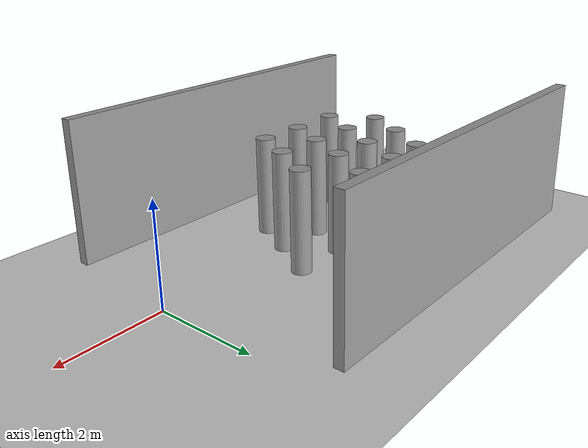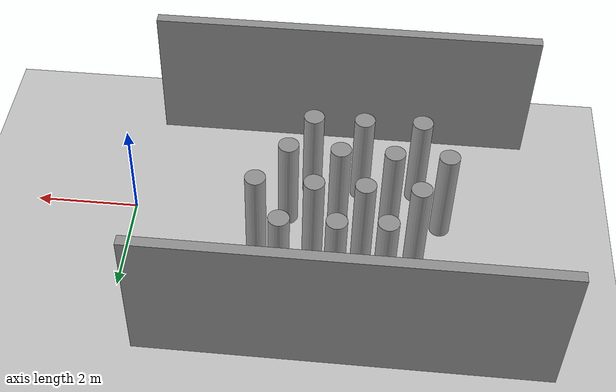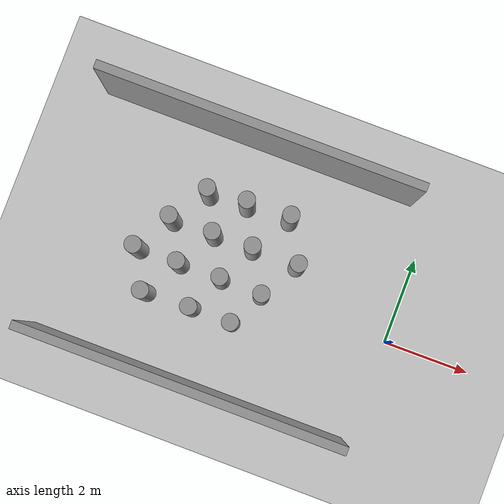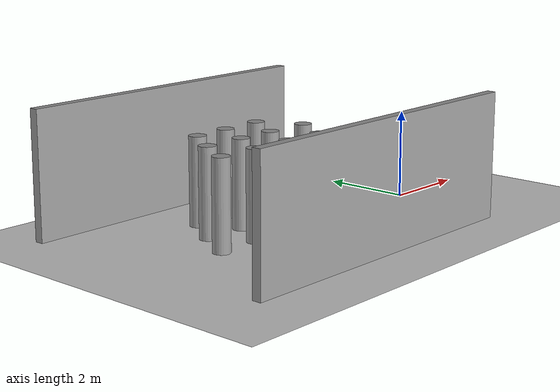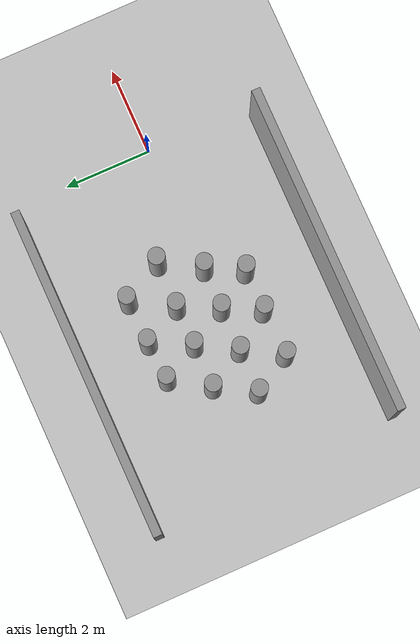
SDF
<sdf version="1.7">
 <world name="default">
  <light name="sun" type="directional">
   <pose>0 0 10 0 -0 0</pose>
   <diffuse>0.8 0.8 0.8 1</diffuse>
   <specular>0.2 0.2 0.2 1</specular>
   <attenuation>
    <range>1000</range>
    <constant>0.9</constant>
    <linear>0.01</linear>
    <quadratic>0.001</quadratic>
   </attenuation>
   <direction>-0.5 0.1 -0.9</direction>
   <spot><inner_angle>0</inner_angle><outer_angle>0</outer_angle><falloff>0</falloff></spot>
  </light>
  <model name="ground_plane">
   <static>1</static>
   <link name="link">
    <collision name="collision">
     <geometry><plane><normal>0 0 1</normal><size>100 100</size></plane></geometry>
     <surface>
      <contact><collide_bitmask>65535</collide_bitmask></contact>
      <friction><ode><mu>100</mu><mu2>50</mu2></ode></friction>
     </surface>
    </collision>
    <visual name="visual">
     <cast_shadows>0</cast_shadows>
     <geometry><plane><normal>0 0 1</normal><size>100 100</size></plane></geometry>
     <material>
      <script><uri>file://media/materials/scripts/gazebo.material</uri><name>Gazebo/Grey</name></script>
     </material>
    </visual>
   </link>
  </model>
  <gravity>0 0 -9.8</gravity>
  <magnetic_field>6e-06 2.3e-05 -4.2e-05</magnetic_field>
  <atmosphere type="adiabatic"/>
  <physics type="ode">
   <max_step_size>0.001</max_step_size>
   <real_time_factor>1</real_time_factor>
   <real_time_update_rate>1000</real_time_update_rate>
  </physics>
  <scene><ambient>0.4 0.4 0.4 1</ambient><background>0.7 0.7 0.7 1</background><shadows>1</shadows></scene>
  <spherical_coordinates>
   <surface_model>EARTH_WGS84</surface_model>
   <latitude_deg>0</latitude_deg>
   <longitude_deg>0</longitude_deg>
   <elevation>0</elevation>
   <heading_deg>0</heading_deg>
  </spherical_coordinates>
  <model name="grey_wall_clone">
   <static>1</static>
   <link name="link">
    <pose>0 0 1.4 0 -0 0</pose>
    <collision name="collision"><geometry><box><size>7.5 0.2 2.8</size></box></geometry></collision>
    <visual name="visual">
     <cast_shadows>0</cast_shadows>
     <geometry><box><size>7.5 0.2 2.8</size></box></geometry>
     <material>
      <script>
       <uri>model://grey_wall/materials/scripts</uri>
       <uri>model://grey_wall/materials/textures</uri>
       <name>vrc/grey_wall</name>
      </script>
     </material>
    </visual>
   </link>
   <pose>-3.94089 -2.49307 0 0 -0 0</pose>
  </model>
  <model name="grey_wall_clone_0">
   <static>1</static>
   <link name="link">
    <pose>0 0 1.4 0 -0 0</pose>
    <collision name="collision"><geometry><box><size>7.5 0.2 2.8</size></box></geometry></collision>
    <visual name="visual">
     <cast_shadows>0</cast_shadows>
     <geometry><box><size>7.5 0.2 2.8</size></box></geometry>
     <material>
      <script>
       <uri>model://grey_wall/materials/scripts</uri>
       <uri>model://grey_wall/materials/textures</uri>
       <name>vrc/grey_wall</name>
      </script>
     </material>
    </visual>
   </link>
   <pose>-4.27319 3.25725 0 0 -0 0</pose>
  </model>
  <model name="unit_cylinder_0_clone_clone">
   <pose>-4.03442 1.7658 0.992554 0 -0 -0.010704</pose>
   <link name="link">
    <inertial>
     <mass>1</mass>
     <inertia><ixx>0.145833</ixx><ixy>0</ixy><ixz>0</ixz><iyy>0.145833</iyy><iyz>0</iyz><izz>0.125</izz></inertia>
    </inertial>
    <collision name="collision">
     <geometry><cylinder><radius>0.194172</radius><length>1.98512</length></cylinder></geometry>
    </collision>
    <visual name="visual">
     <geometry><cylinder><radius>0.194172</radius><length>1.98512</length></cylinder></geometry>
     <material>
      <script><name>Gazebo/Grey</name><uri>file://media/materials/scripts/gazebo.material</uri></script>
     </material>
    </visual>
   </link>
  </model>
  <model name="unit_cylinder_0_clone_clone_0">
   <pose>-5 2e-06 0.992556 0 0 -0.012664</pose>
   <link name="link">
    <inertial>
     <mass>1</mass>
     <inertia><ixx>0.145833</ixx><ixy>0</ixy><ixz>0</ixz><iyy>0.145833</iyy><iyz>0</iyz><izz>0.125</izz></inertia>
    </inertial>
    <collision name="collision">
     <geometry><cylinder><radius>0.194172</radius><length>1.98512</length></cylinder></geometry>
    </collision>
    <visual name="visual">
     <geometry><cylinder><radius>0.194172</radius><length>1.98512</length></cylinder></geometry>
     <material>
      <script><name>Gazebo/Grey</name><uri>file://media/materials/scripts/gazebo.material</uri></script>
     </material>
    </visual>
   </link>
  </model>
  <model name="unit_cylinder_0_clone_clone_clone">
   <pose>-2.5 0.866602 0.992555 0 0 -0.011113</pose>
   <link name="link">
    <inertial>
     <mass>1</mass>
     <inertia><ixx>0.145833</ixx><ixy>0</ixy><ixz>0</ixz><iyy>0.145833</iyy><iyz>0</iyz><izz>0.125</izz></inertia>
    </inertial>
    <collision name="collision">
     <geometry><cylinder><radius>0.194172</radius><length>1.98512</length></cylinder></geometry>
    </collision>
    <visual name="visual">
     <geometry><cylinder><radius>0.194172</radius><length>1.98512</length></cylinder></geometry>
     <material>
      <script><name>Gazebo/Grey</name><uri>file://media/materials/scripts/gazebo.material</uri></script>
     </material>
    </visual>
   </link>
  </model>
  <model name="unit_cylinder_0_clone_clone_2">
   <pose>-4.49975 0.866632 0.992551 0 -0 -0.034444</pose>
   <link name="link">
    <inertial>
     <mass>1</mass>
     <inertia><ixx>0.145833</ixx><ixy>0</ixy><ixz>0</ixz><iyy>0.145833</iyy><iyz>0</iyz><izz>0.125</izz></inertia>
    </inertial>
    <collision name="collision">
     <geometry><cylinder><radius>0.194173</radius><length>1.98512</length></cylinder></geometry>
    </collision>
    <visual name="visual">
     <geometry><cylinder><radius>0.194173</radius><length>1.98512</length></cylinder></geometry>
     <material>
      <script><name>Gazebo/Grey</name><uri>file://media/materials/scripts/gazebo.material</uri></script>
     </material>
    </visual>
   </link>
  </model>
  <model name="unit_cylinder_0_clone_clone_clone_clone">
   <pose>-5.5 -0.865999 0.992556 0 0 -0.018184</pose>
   <link name="link">
    <inertial>
     <mass>1</mass>
     <inertia><ixx>0.145833</ixx><ixy>0</ixy><ixz>0</ixz><iyy>0.145833</iyy><iyz>0</iyz><izz>0.125</izz></inertia>
    </inertial>
    <collision name="collision">
     <geometry><cylinder><radius>0.194172</radius><length>1.98512</length></cylinder></geometry>
    </collision>
    <visual name="visual">
     <geometry><cylinder><radius>0.194172</radius><length>1.98512</length></cylinder></geometry>
     <material>
      <script><name>Gazebo/Grey</name><uri>file://media/materials/scripts/gazebo.material</uri></script>
     </material>
    </visual>
   </link>
  </model>
  <model name="unit_cylinder_0_clone_clone_clone_clone_0">
   <pose>-6 3e-06 0.992555 0 0 -0.008884</pose>
   <link name="link">
    <inertial>
     <mass>1</mass>
     <inertia><ixx>0.145833</ixx><ixy>0</ixy><ixz>0</ixz><iyy>0.145833</iyy><iyz>0</iyz><izz>0.125</izz></inertia>
    </inertial>
    <collision name="collision">
     <geometry><cylinder><radius>0.194172</radius><length>1.98512</length></cylinder></geometry>
    </collision>
    <visual name="visual">
     <geometry><cylinder><radius>0.194172</radius><length>1.98512</length></cylinder></geometry>
     <material>
      <script><name>Gazebo/Grey</name><uri>file://media/materials/scripts/gazebo.material</uri></script>
     </material>
    </visual>
   </link>
  </model>
  <model name="unit_cylinder_0_clone_clone_clone_clone_0_clone_1">
   <pose>-3.02 1.79893 0.992556 0 0 -0.014292</pose>
   <link name="link">
    <inertial>
     <mass>1</mass>
     <inertia><ixx>0.145833</ixx><ixy>0</ixy><ixz>0</ixz><iyy>0.145833</iyy><iyz>0</iyz><izz>0.125</izz></inertia>
    </inertial>
    <collision name="collision">
     <geometry><cylinder><radius>0.194172</radius><length>1.98512</length></cylinder></geometry>
    </collision>
    <visual name="visual">
     <geometry><cylinder><radius>0.194172</radius><length>1.98512</length></cylinder></geometry>
     <material>
      <script><name>Gazebo/Grey</name><uri>file://media/materials/scripts/gazebo.material</uri></script>
     </material>
    </visual>
   </link>
  </model>
  <model name="unit_cylinder_0_clone_clone_2_clone">
   <pose>-4 4e-06 0.992555 0 0 -0.009445</pose>
   <link name="link">
    <inertial>
     <mass>1</mass>
     <inertia><ixx>0.145833</ixx><ixy>0</ixy><ixz>0</ixz><iyy>0.145833</iyy><iyz>0</iyz><izz>0.125</izz></inertia>
    </inertial>
    <collision name="collision">
     <geometry><cylinder><radius>0.194173</radius><length>1.98512</length></cylinder></geometry>
    </collision>
    <visual name="visual">
     <geometry><cylinder><radius>0.194173</radius><length>1.98512</length></cylinder></geometry>
     <material>
      <script><name>Gazebo/Grey</name><uri>file://media/materials/scripts/gazebo.material</uri></script>
     </material>
    </visual>
   </link>
  </model>
  <model name="unit_cylinder_0_clone_clone_2_clone_0">
   <pose>-5.5 0.866603 0.992555 0 0 -0.011059</pose>
   <link name="link">
    <inertial>
     <mass>1</mass>
     <inertia><ixx>0.145833</ixx><ixy>0</ixy><ixz>0</ixz><iyy>0.145833</iyy><iyz>0</iyz><izz>0.125</izz></inertia>
    </inertial>
    <collision name="collision">
     <geometry><cylinder><radius>0.194173</radius><length>1.98512</length></cylinder></geometry>
    </collision>
    <visual name="visual">
     <geometry><cylinder><radius>0.194173</radius><length>1.98512</length></cylinder></geometry>
     <material>
      <script><name>Gazebo/Grey</name><uri>file://media/materials/scripts/gazebo.material</uri></script>
     </material>
    </visual>
   </link>
  </model>
  <model name="unit_cylinder_0_clone_clone_clone_clone_clone">
   <pose>-4.40404 -0.831951 0.992555 0 0 -0.096642</pose>
   <link name="link">
    <inertial>
     <mass>1</mass>
     <inertia><ixx>0.145833</ixx><ixy>0</ixy><ixz>0</ixz><iyy>0.145833</iyy><iyz>0</iyz><izz>0.125</izz></inertia>
    </inertial>
    <collision name="collision">
     <geometry><cylinder><radius>0.194172</radius><length>1.98512</length></cylinder></geometry>
    </collision>
    <visual name="visual">
     <geometry><cylinder><radius>0.194172</radius><length>1.98512</length></cylinder></geometry>
     <material>
      <script><name>Gazebo/Grey</name><uri>file://media/materials/scripts/gazebo.material</uri></script>
     </material>
    </visual>
   </link>
  </model>
  <model name="unit_cylinder_0_clone_clone_2_clone_clone">
   <pose>-3.56947 0.87923 0.992555 0 0 -0.009443</pose>
   <link name="link">
    <inertial>
     <mass>1</mass>
     <inertia><ixx>0.145833</ixx><ixy>0</ixy><ixz>0</ixz><iyy>0.145833</iyy><iyz>0</iyz><izz>0.125</izz></inertia>
    </inertial>
    <collision name="collision">
     <geometry><cylinder><radius>0.194173</radius><length>1.98512</length></cylinder></geometry>
    </collision>
    <visual name="visual">
     <geometry><cylinder><radius>0.194173</radius><length>1.98512</length></cylinder></geometry>
     <material>
      <script><name>Gazebo/Grey</name><uri>file://media/materials/scripts/gazebo.material</uri></script>
     </material>
    </visual>
   </link>
  </model>
  <model name="unit_cylinder_0_clone_clone_2_clone_clone_0">
   <pose>-3.02545 -0.024811 0.992556 0 0 -0.011151</pose>
   <link name="link">
    <inertial>
     <mass>1</mass>
     <inertia><ixx>0.145833</ixx><ixy>0</ixy><ixz>0</ixz><iyy>0.145833</iyy><iyz>0</iyz><izz>0.125</izz></inertia>
    </inertial>
    <collision name="collision">
     <geometry><cylinder><radius>0.194173</radius><length>1.98512</length></cylinder></geometry>
    </collision>
    <visual name="visual">
     <geometry><cylinder><radius>0.194173</radius><length>1.98512</length></cylinder></geometry>
     <material>
      <script><name>Gazebo/Grey</name><uri>file://media/materials/scripts/gazebo.material</uri></script>
     </material>
    </visual>
   </link>
  </model>
  <model name="unit_cylinder_0_clone_clone_clone_0">
   <pose>-4.93683 1.71553 0.992556 0 0 -0.010583</pose>
   <link name="link">
    <inertial>
     <mass>1</mass>
     <inertia><ixx>0.145833</ixx><ixy>0</ixy><ixz>0</ixz><iyy>0.145833</iyy><iyz>0</iyz><izz>0.125</izz></inertia>
    </inertial>
    <collision name="collision">
     <geometry><cylinder><radius>0.194172</radius><length>1.98512</length></cylinder></geometry>
    </collision>
    <visual name="visual">
     <geometry><cylinder><radius>0.194172</radius><length>1.98512</length></cylinder></geometry>
     <material>
      <script><name>Gazebo/Grey</name><uri>file://media/materials/scripts/gazebo.material</uri></script>
     </material>
    </visual>
   </link>
  </model>
  <model name="unit_cylinder_0_clone_clone_clone_clone_0_clone_1_clone">
   <pose>-3.44046 -0.834046 0.992551 0 -0 -0.017237</pose>
   <link name="link">
    <inertial>
     <mass>1</mass>
     <inertia><ixx>0.145833</ixx><ixy>0</ixy><ixz>0</ixz><iyy>0.145833</iyy><iyz>0</iyz><izz>0.125</izz></inertia>
    </inertial>
    <collision name="collision">
     <geometry><cylinder><radius>0.194172</radius><length>1.98512</length></cylinder></geometry>
    </collision>
    <visual name="visual">
     <geometry><cylinder><radius>0.194172</radius><length>1.98512</length></cylinder></geometry>
     <material>
      <script><name>Gazebo/Grey</name><uri>file://media/materials/scripts/gazebo.material</uri></script>
     </material>
    </visual>
   </link>
  </model>
 </world>
</sdf>
